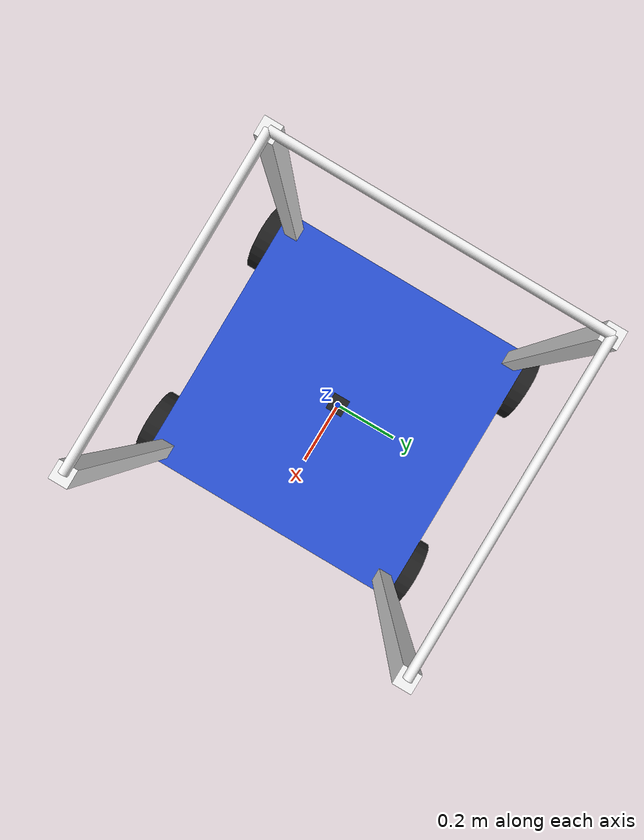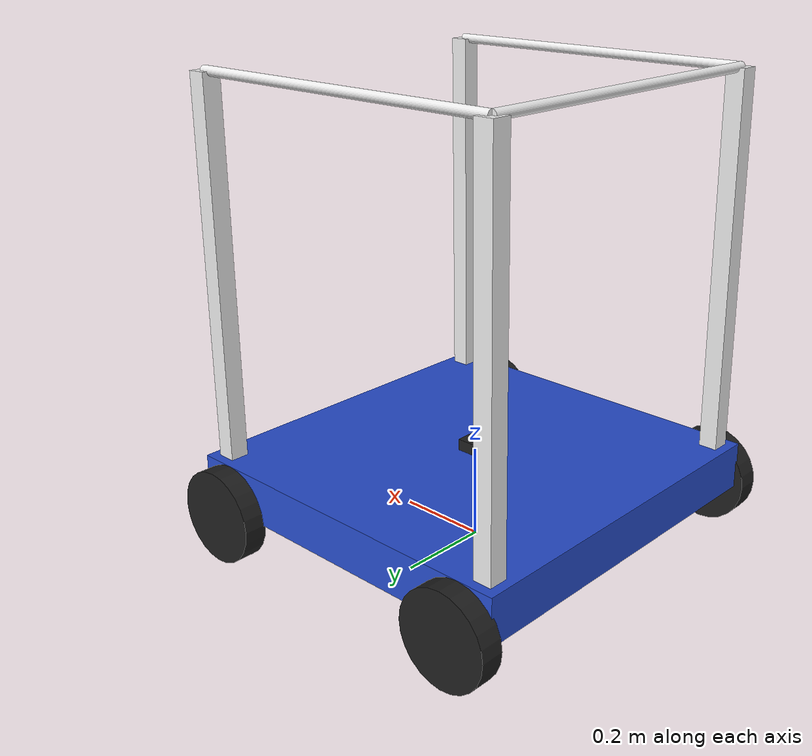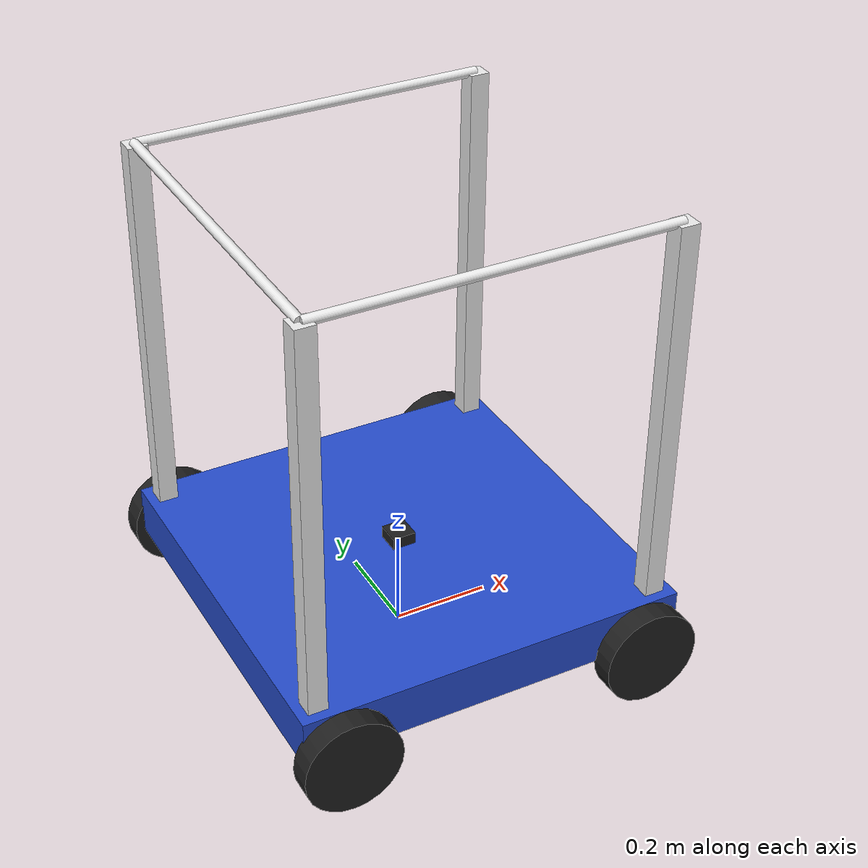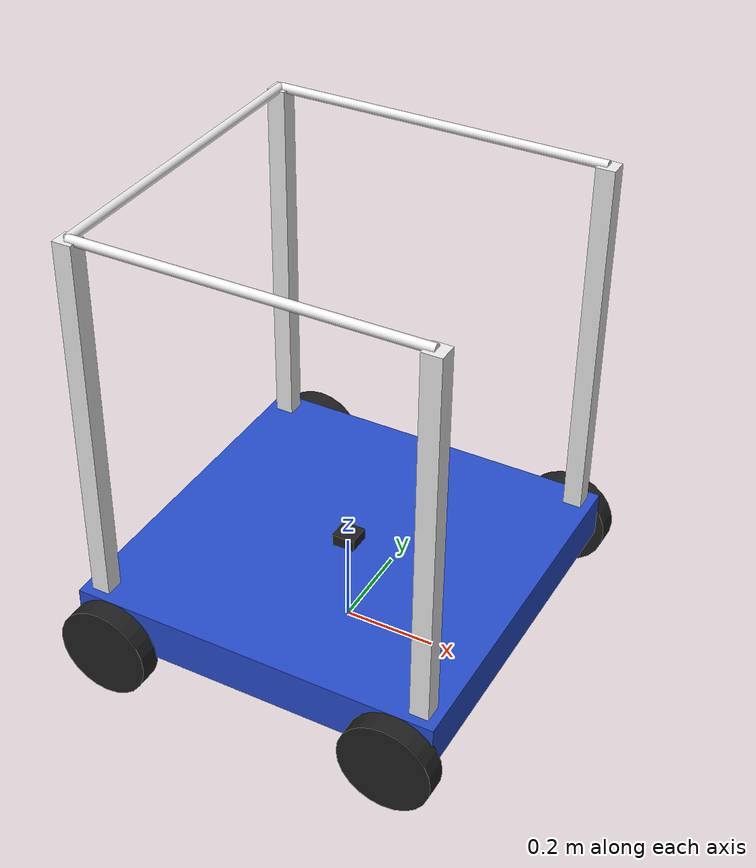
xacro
<?xml version="1.0"?>
<robot xmlns:xacro="http://www.ros.org/wiki/xacro">

    <xacro:property name="base_length" value="0.8"/>
    <xacro:property name="base_width" value="0.8"/>
    <xacro:property name="base_height" value="0.1"/>
    <xacro:property name="wheel_radius" value="0.10"/>
    <xacro:property name="base_z_offset" value="${wheel_radius}"/>

    <xacro:property name="wheel_thickness" value="0.05"/>
    <xacro:property name="wheel_offset_x" value="0.32"/>
    <xacro:property name="wheel_offset_y" value="0.42"/>

    <xacro:property name="pillar_height" value="0.8"/>
    <xacro:property name="pillar_side" value="0.04"/>
    <xacro:property name="pillar_offset_x" value="0.36"/>
    <xacro:property name="pillar_offset_y" value="0.36"/>

    <xacro:property name="bar_radius" value="0.01"/>
    <xacro:property name="bar_length" value="0.72"/>

    <link name="base_footprint"/>

    <joint name="base_joint" type="fixed">
        <parent link="base_footprint"/>
        <child link="base_link"/>
        <origin xyz="0 0 ${base_z_offset}" rpy="0 0 0"/>
    </joint>

    <link name="base_link">
        <visual>
            <geometry> <box size="${base_length} ${base_width} ${base_height}"/> </geometry>
            <origin xyz="0 0 ${base_height/2}" rpy="0 0 0"/>
            <material name="blue"/>
        </visual>
        <collision>
            <geometry> <box size="${base_length} ${base_width} ${base_height}"/> </geometry>
            <origin xyz="0 0 ${base_height/2}" rpy="0 0 0"/>
        </collision>
        <xacro:inertial_box mass="15.0" x="${base_length}" y="${base_width}" z="${base_height}">
            <origin xyz="0 0 ${base_height/2}" rpy="0 0 0"/>
        </xacro:inertial_box>
    </link>

    <xacro:macro name="wheel" params="prefix x_reflect y_reflect">
        <link name="${prefix}_wheel">
            <visual>
                <geometry> <cylinder radius="${wheel_radius}" length="${wheel_thickness}"/> </geometry>
                <origin xyz="0 0 0" rpy="${pi/2} 0 0"/>
                <material name="black"/>
            </visual>
            <collision>
                <geometry> <cylinder radius="${wheel_radius}" length="${wheel_thickness}"/> </geometry>
                <origin xyz="0 0 0" rpy="${pi/2} 0 0"/>
            </collision>
            <xacro:inertial_cylinder mass="0.5" length="${wheel_thickness}" radius="${wheel_radius}">
                <origin xyz="0 0 0" rpy="${pi/2} 0 0"/>
            </xacro:inertial_cylinder>
        </link>

        <joint name="${prefix}_wheel_joint" type="continuous">
            <parent link="base_link"/>
            <child link="${prefix}_wheel"/>
            <origin xyz="${x_reflect*wheel_offset_x} ${y_reflect*wheel_offset_y} 0" rpy="0 0 0"/>
            <axis xyz="0 1 0"/>
            <dynamics damping="0.1" friction="0.1"/>
        </joint>
    </xacro:macro>

    <xacro:macro name="pillar" params="prefix x_reflect y_reflect">
        <link name="${prefix}_pillar">
            <visual> <geometry> <box size="${pillar_side} ${pillar_side} ${pillar_height}"/> </geometry> <material name="white"/> </visual>
            <collision> <geometry> <box size="${pillar_side} ${pillar_side} ${pillar_height}"/> </geometry> </collision>
            <xacro:inertial_box mass="0.2" x="${pillar_side}" y="${pillar_side}" z="${pillar_height}">
                <origin xyz="0 0 0" rpy="0 0 0"/>
            </xacro:inertial_box>
        </link>
        <joint name="${prefix}_pillar_joint" type="fixed">
            <parent link="base_link"/>
            <child link="${prefix}_pillar"/>
            <origin xyz="${x_reflect*pillar_offset_x} ${y_reflect*pillar_offset_y} ${pillar_height/2 + base_height}" rpy="0 0 0"/>
        </joint>
    </xacro:macro>

    <xacro:macro name="crossbars" params="side_name length r p y x_pos y_pos">
        <link name="${side_name}_bar">
            <visual> <geometry> <cylinder radius="${bar_radius}" length="${length}"/> </geometry> <material name="white"/> </visual>
            <collision> <geometry> <cylinder radius="${bar_radius}" length="${length}"/> </geometry> </collision>
            <xacro:inertial_cylinder mass="0.1" length="${length}" radius="${bar_radius}">
                <origin xyz="0 0 0" rpy="0 0 0"/>
            </xacro:inertial_cylinder>
        </link>
        <joint name="${side_name}_bar_joint" type="fixed">
            <parent link="base_link"/>
            <child link="${side_name}_bar"/>
            <origin xyz="${x_pos} ${y_pos} ${pillar_height + base_height}" rpy="${r} ${p} ${y}"/>
        </joint>
    </xacro:macro>

    <xacro:wheel prefix="front_left" x_reflect="1" y_reflect="1"/>
    <xacro:wheel prefix="front_right" x_reflect="1" y_reflect="-1"/>
    <xacro:wheel prefix="back_left" x_reflect="-1" y_reflect="1"/>
    <xacro:wheel prefix="back_right" x_reflect="-1" y_reflect="-1"/>

    <xacro:pillar prefix="front_left" x_reflect="1" y_reflect="1"/>
    <xacro:pillar prefix="front_right" x_reflect="1" y_reflect="-1"/>
    <xacro:pillar prefix="back_left" x_reflect="-1" y_reflect="1"/>
    <xacro:pillar prefix="back_right" x_reflect="-1" y_reflect="-1"/>

    <xacro:crossbars side_name="back" length="${bar_length}" r="${pi/2}" p="0" y="0" x_pos="${-pillar_offset_x}" y_pos="0"/>
    <xacro:crossbars side_name="right" length="${bar_length}" r="0" p="${pi/2}" y="0" x_pos="0" y_pos="${-pillar_offset_y}"/>
    <xacro:crossbars side_name="left" length="${bar_length}" r="0" p="${pi/2}" y="0" x_pos="0" y_pos="${pillar_offset_y}"/>

    <xacro:macro name="wheel_gazebo" params="prefix">
        <gazebo reference="${prefix}_wheel">
            <mu1 value="0.2"/>
            <mu2 value="0.2"/>
            <fdir1 value="1 0 0"/>
            <kp value="1000000.0"/>
            <kd value="10.0"/>
            <material>Gazebo/Black</material>
        </gazebo>
    </xacro:macro>

    <xacro:wheel_gazebo prefix="front_left"/>
    <xacro:wheel_gazebo prefix="front_right"/>
    <xacro:wheel_gazebo prefix="back_left"/>
    <xacro:wheel_gazebo prefix="back_right"/>

    <gazebo reference="base_link">
        <material>Gazebo/Blue</material>
    </gazebo>

    <link name="imu_link">
        <visual>
            <geometry> <box size="0.05 0.05 0.05"/> </geometry>
            <material name="black"/>
        </visual>
        <xacro:inertial_box mass="0.01" x="0.05" y="0.05" z="0.05">
            <origin xyz="0 0 0" rpy="0 0 0"/>
        </xacro:inertial_box>
    </link>

    <joint name="imu_joint" type="fixed">
        <parent link="base_link"/>
        <child link="imu_link"/>
        <origin xyz="0 0 0.1"/>
    </joint>

    <gazebo reference="imu_link">
        <sensor name="imu_sensor" type="imu">
            <always_on>1</always_on>
            <update_rate>100</update_rate>
            <visualize>true</visualize>
            <topic>/imu</topic>
            <gz_frame_id>imu_link</gz_frame_id>
            <plugin filename="ignition-gazebo-imu-system" name="ignition::gazebo::systems::Imu">
            </plugin>
        </sensor>
    </gazebo>

</robot>
